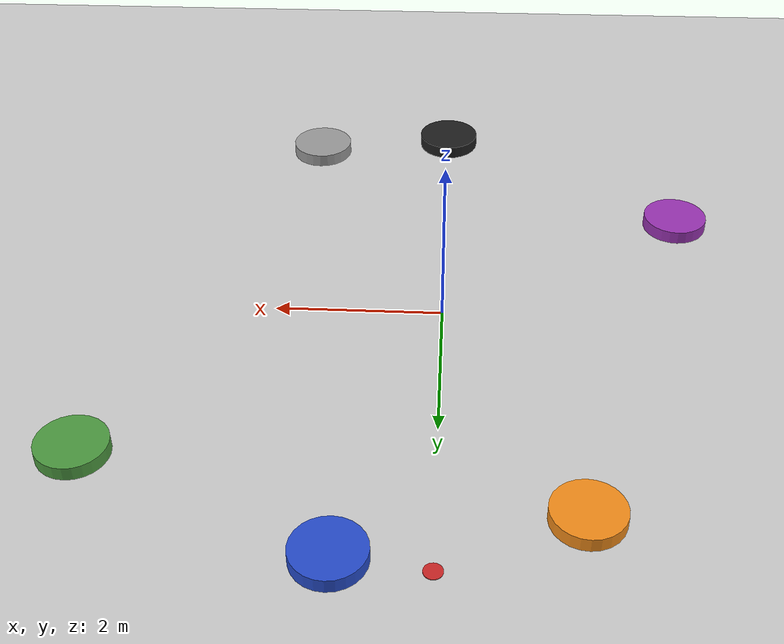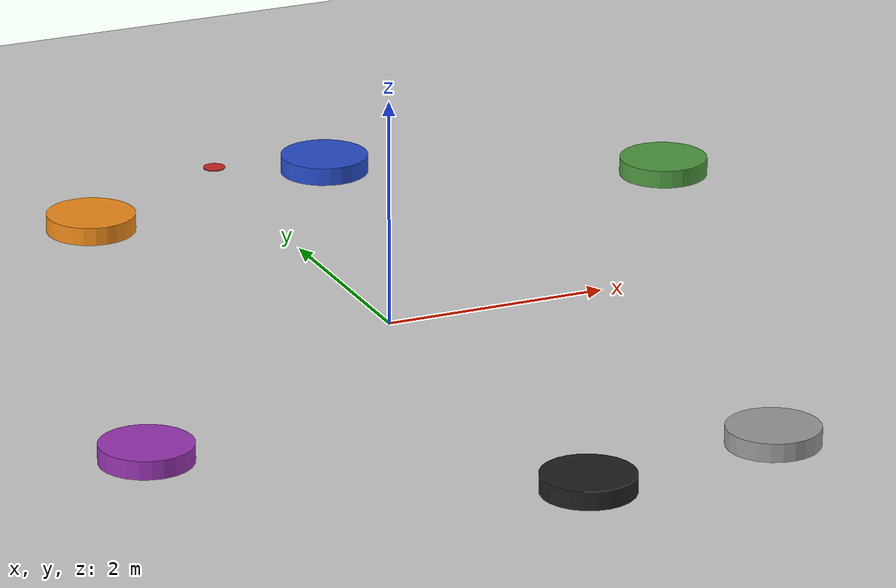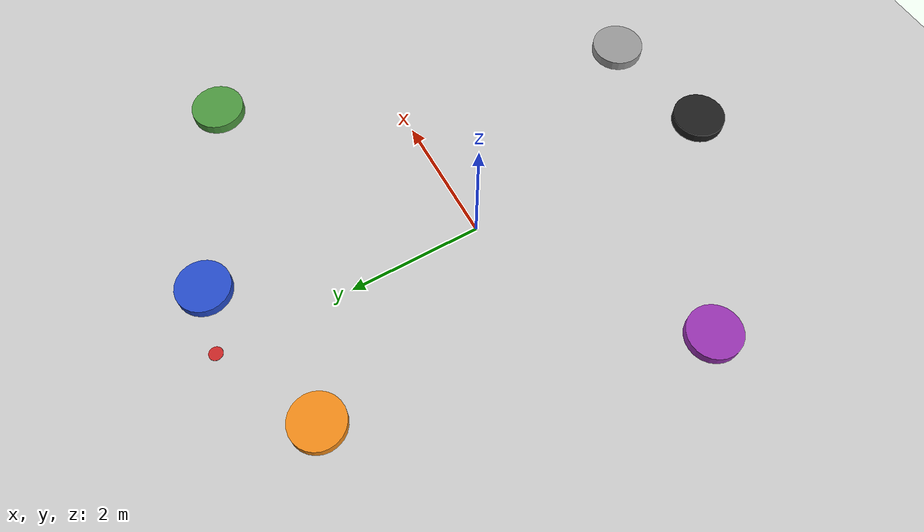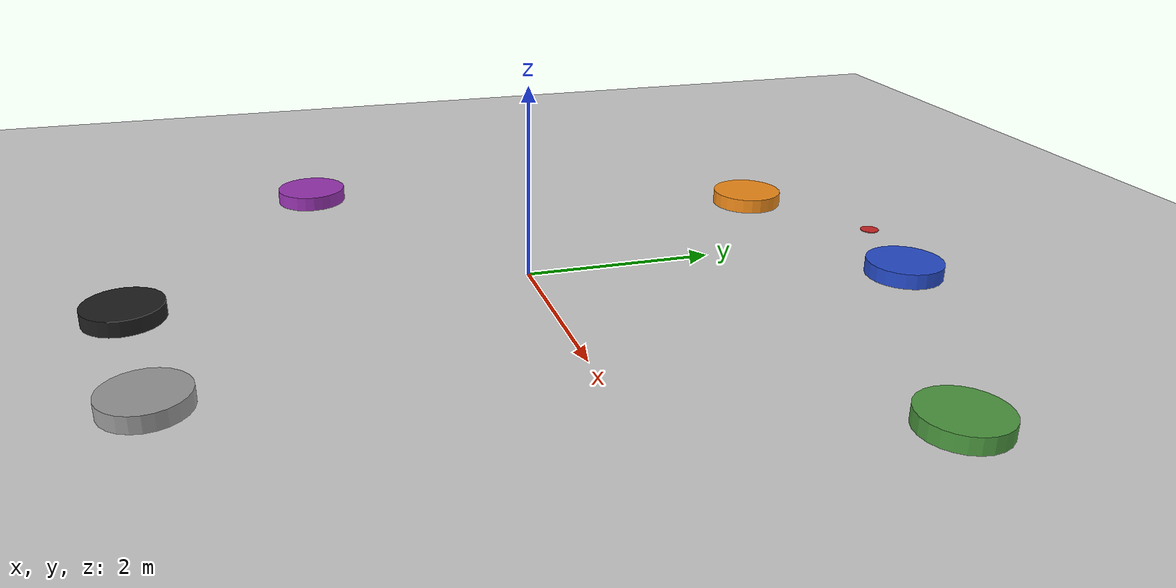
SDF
<sdf version='1.4'>
  <world name='default'>
    <!-- A global light source -->

    <physics type="ode">
      <real_time_update_rate>1000.0</real_time_update_rate>
      <max_step_size>0.0001</max_step_size>
      <real_time_factor>1</real_time_factor>
      <ode>
        <solver>
          <type>quick</type>
          <iters>150</iters>
          <precon_iters>0</precon_iters>
          <sor>1.400000</sor>
          <use_dynamic_moi_rescaling>1</use_dynamic_moi_rescaling>
        </solver>
        <constraints>
          <cfm>0.00001</cfm>
          <erp>0.2</erp>
          <contact_max_correcting_vel>2000.000000</contact_max_correcting_vel>
          <contact_surface_layer>0.01000</contact_surface_layer>
        </constraints>
      </ode>
    </physics>

    <model name="human_1">
      <pose>3.8 2.5 0 0 0 0</pose>
      <link name="link">
        <collision name="collision">
          <geometry>
            <cylinder>
              <radius>0.4</radius>
              <length>0.3</length>
            </cylinder>
          </geometry>
        </collision>

        <visual name="visual">
          <geometry>
            <cylinder>
              <radius>0.4</radius>
              <length>0.3</length>
            </cylinder>
          </geometry>
          <material>
            <script>
              <uri>file://media/materials/scripts/gazebo.material</uri>
              <name>Gazebo/Grass</name>
            </script>
          </material>
        </visual>
      </link>
      <plugin name="human_1" filename="libobstacle_2.so"/>
    </model>

    <model name="human_2">
      <pose>1 3.8 0 0 0 0</pose>
      <link name="link">
        <collision name="collision">
          <geometry>
            <cylinder>
              <radius>0.4</radius>
              <length>0.3</length>
            </cylinder>
          </geometry>
        </collision>

        <visual name="visual">
          <geometry>
            <cylinder>
              <radius>0.4</radius>
              <length>0.3</length>
            </cylinder>
          </geometry>
          <material>
            <script>
              <uri>file://media/materials/scripts/gazebo.material</uri>
              <name>Gazebo/Blue</name>
            </script>
          </material>
        </visual>
      </link>
      <plugin name="human_2" filename="libobstacle_2.so"/>
    </model>

    <model name="human_3">
      <pose>-1.5 3.2 0 0 0 0</pose>
      <link name="link">
        <collision name="collision">
          <geometry>
            <cylinder>
              <radius>0.4</radius>
              <length>0.3</length>
            </cylinder>
          </geometry>
        </collision>

        <visual name="visual">
          <geometry>
            <cylinder>
              <radius>0.4</radius>
              <length>0.3</length>
            </cylinder>
          </geometry>
            <material>
            <script>
              <uri>file://media/materials/scripts/gazebo.material</uri>
              <name>Gazebo/Orange</name>
            </script>
          </material>
        </visual>
      </link>
      <plugin name="human_3" filename="libobstacle_2.so"/>
    </model>

    <model name="human_4">
      <pose>-3 -2 0 0 0 0</pose>
      <link name="link">
        <collision name="collision">
          <geometry>
            <cylinder>
              <radius>0.4</radius>
              <length>0.3</length>
            </cylinder>
          </geometry>
        </collision>

        <visual name="visual">
          <geometry>
            <cylinder>
              <radius>0.4</radius>
              <length>0.3</length>
            </cylinder>
          </geometry>
          <material>
            <script>
              <uri>file://media/materials/scripts/gazebo.material</uri>
              <name>Gazebo/Purple</name>
            </script>
          </material>
        </visual>
      </link>
      <plugin name="human_4" filename="libobstacle_2.so"/>
    </model>

    <model name="human_5">
      <pose>1.8 -3.7 0 0 0 0</pose>
      <link name="link">
        <collision name="collision">
          <geometry>
            <cylinder>
              <radius>0.4</radius>
              <length>0.3</length>
            </cylinder>
          </geometry>
        </collision>

        <visual name="visual">
          <geometry>
            <cylinder>
              <radius>0.4</radius>
              <length>0.3</length>
            </cylinder>
          </geometry>
          <material>
            <script>
              <uri>file://media/materials/scripts/gazebo.material</uri>
              <name>Gazebo/Grey</name>
            </script>
          </material>
        </visual>
      </link>
      <plugin name="human_5" filename="libobstacle_2.so"/>
    </model>

    <model name="robot">
      <pose>0 -4 0 0 0 0</pose>
      <link name="link">
        <collision name="collision">
          <geometry>
            <cylinder>
              <radius>0.4</radius>
              <length>0.3</length>
            </cylinder>
          </geometry>
        </collision>

        <visual name="visual">
          <geometry>
            <cylinder>
              <radius>0.4</radius>
              <length>0.3</length>
            </cylinder>
          </geometry>
          <material>
            <script>
              <uri>file://media/materials/scripts/gazebo.material</uri>
              <name>Gazebo/Black</name>
            </script>
          </material>
        </visual>
      </link>
      <plugin name="robot" filename="libobstacle_2.so"/>
    </model>

    <!-- A ground plane -->
    <include>
      <uri>model://ground_plane</uri>
    </include>

    <model name="goal">
      <pose>0 4 0.1 0 0 0</pose>
       <static>true</static>
         <link name="goal">
         <visual name='goal1'>
          <geometry>
            <cylinder>
              <radius>0.1</radius>
              <length>0.01</length>
            </cylinder>
          </geometry>
          <material>
            <script>
              <uri>file://media/materials/scripts/gazebo.material</uri>
              <name>Gazebo/Red</name>
            </script>
          </material>
        </visual>
    </link>
  </model>

    <light name="sun" type="directional">
        <cast_shadows>1</cast_shadows>
        <pose>0 0 10 0 -0 0</pose>
        <diffuse>0.8 0.8 0.8 1</diffuse>
        <specular>0.2 0.2 0.2 1</specular>
        <attenuation>
            <range>1000</range>
            <constant>0.9</constant>
            <linear>0.01</linear>
            <quadratic>0.001</quadratic>
        </attenuation>
        <direction>0 0.5 -0.9</direction>
    </light>
    <light name="point_light" type="point">
        <pose>0 -0.377195 6.59868 0 -0 0</pose>
        <diffuse>0.784314 0.784314 0.784314 1</diffuse>
        <specular>0.0980392 0.0980392 0.0980392 1</specular>
        <attenuation>
            <range>50</range>
            <constant>0.8</constant>
            <linear>0</linear>
            <quadratic>0.001</quadratic>
        </attenuation>
        <cast_shadows>0</cast_shadows>
        <direction>0 0 -1</direction>
    </light>

    <scene>
      <ambient>0.2 0.2 0.2 1</ambient>
      <background>0.7 0.7 0.7 1</background>
      <shadows>true</shadows>
    </scene>

    <gui fullscreen='0'>
      <camera name='user_camera'>
        <pose>0.0 0.0 17.0 0 1.5708 0</pose>
        <view_controller>orbit</view_controller>
      </camera>
    </gui>
  </world>
</sdf>
